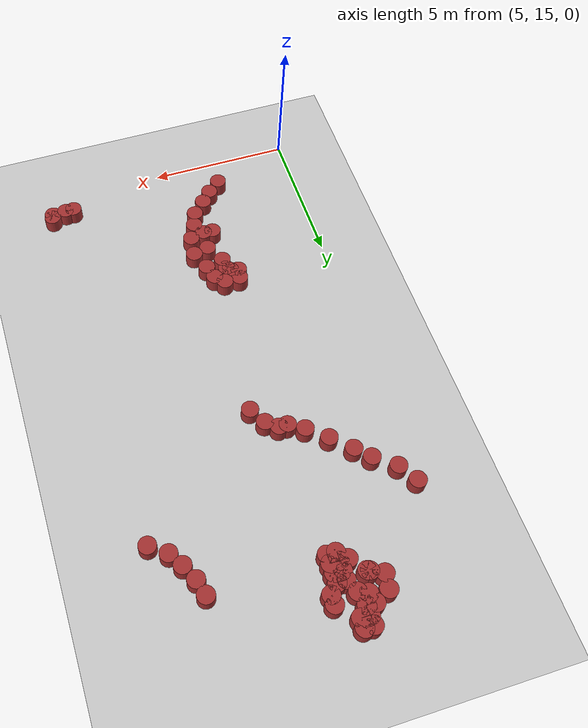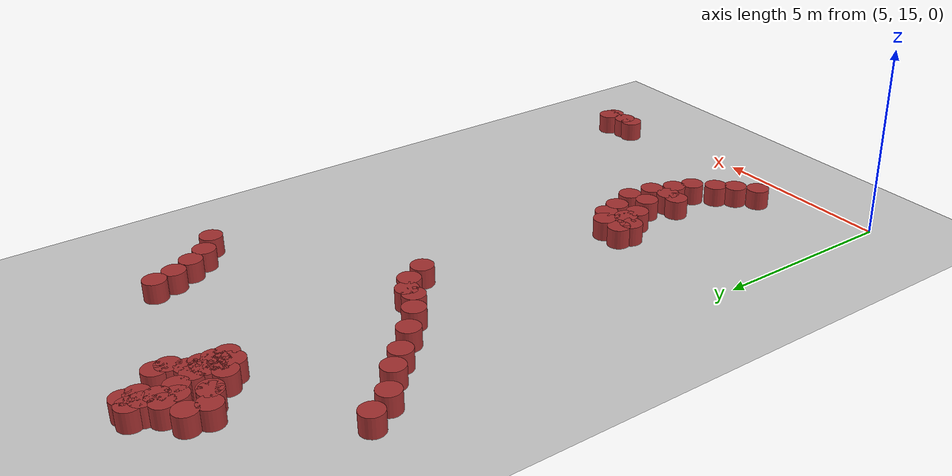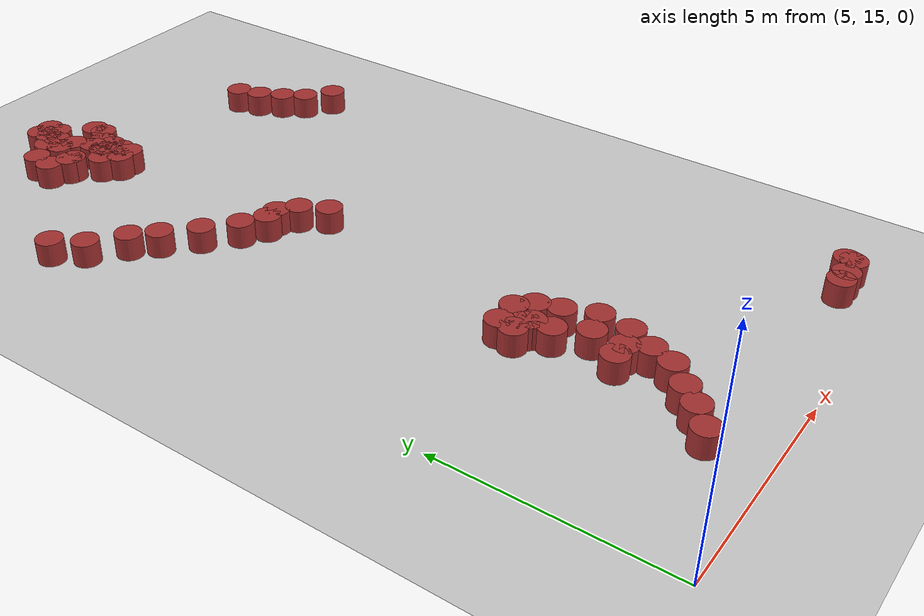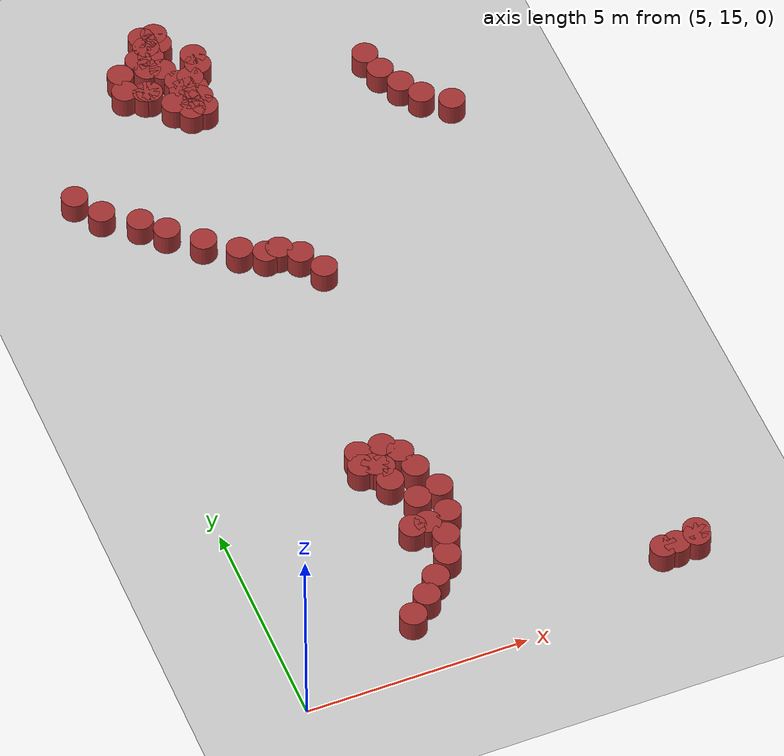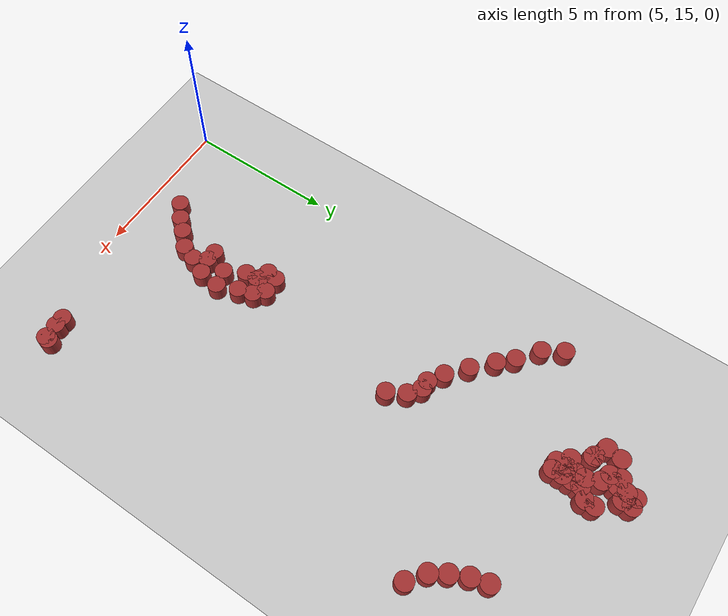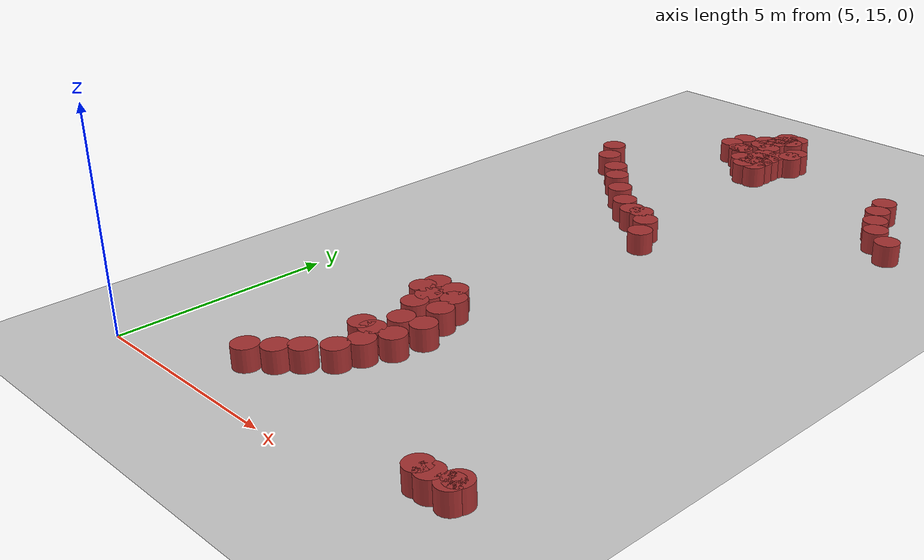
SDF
<sdf version="1.6">
 <world name="default">
  <model name="ground_plane">
   <static>1</static>
   <link name="link">
    <collision name="collision">
     <geometry><plane><normal>0 0 1</normal><size>100 100</size></plane></geometry>
     <surface><friction><ode><mu>100</mu><mu2>50</mu2></ode></friction></surface>
    </collision>
    <visual name="visual">
     <cast_shadows>0</cast_shadows>
     <geometry><plane><normal>0 0 1</normal><size>100 100</size></plane></geometry>
     <material>
      <script><uri>file://media/materials/scripts/gazebo.material</uri><name>Gazebo/Grey</name></script>
     </material>
    </visual>
   </link>
  </model>
  <model name="unit_cylinder_12">
   <static>1</static>
   <pose>9.4503 19.9028 0 0 -0 0</pose>
   <link name="link">
    <inertial>
     <mass>1</mass>
     <inertia><ixx>0.145833</ixx><ixy>0</ixy><ixz>0</ixz><iyy>0.145833</iyy><iyz>0</iyz><izz>0.125</izz></inertia>
    </inertial>
    <collision name="collision">
     <geometry><cylinder><radius>0.3</radius><length>1</length></cylinder></geometry>
    </collision>
    <visual name="visual">
     <geometry><cylinder><radius>0.3</radius><length>1</length></cylinder></geometry>
     <material><ambient>0.648 0.192 0.192 1</ambient><diffuse>0.648 0.192 0.192 1</diffuse></material>
     <material>
      <script><name>Gazebo/Grey</name><uri>file://media/materials/scripts/gazebo.material</uri></script>
     </material>
    </visual>
   </link>
  </model>
  <model name="unit_cylinder_15">
   <static>1</static>
   <pose>9.62674 18.5138 0 0 -0 0</pose>
   <link name="link">
    <inertial>
     <mass>1</mass>
     <inertia><ixx>0.145833</ixx><ixy>0</ixy><ixz>0</ixz><iyy>0.145833</iyy><iyz>0</iyz><izz>0.125</izz></inertia>
    </inertial>
    <collision name="collision">
     <geometry><cylinder><radius>0.3</radius><length>1</length></cylinder></geometry>
    </collision>
    <visual name="visual">
     <geometry><cylinder><radius>0.3</radius><length>1</length></cylinder></geometry>
     <material><ambient>0.648 0.192 0.192 1</ambient><diffuse>0.648 0.192 0.192 1</diffuse></material>
     <material>
      <script><name>Gazebo/Grey</name><uri>file://media/materials/scripts/gazebo.material</uri></script>
     </material>
    </visual>
   </link>
  </model>
  <model name="unit_cylinder_16">
   <static>1</static>
   <pose>9.39027 26.4022 0 0 -0 0</pose>
   <link name="link">
    <inertial>
     <mass>1</mass>
     <inertia><ixx>0.145833</ixx><ixy>0</ixy><ixz>0</ixz><iyy>0.145833</iyy><iyz>0</iyz><izz>0.125</izz></inertia>
    </inertial>
    <collision name="collision">
     <geometry><cylinder><radius>0.3</radius><length>1</length></cylinder></geometry>
    </collision>
    <visual name="visual">
     <geometry><cylinder><radius>0.3</radius><length>1</length></cylinder></geometry>
     <material><ambient>0.648 0.192 0.192 1</ambient><diffuse>0.648 0.192 0.192 1</diffuse></material>
     <material>
      <script><name>Gazebo/Grey</name><uri>file://media/materials/scripts/gazebo.material</uri></script>
     </material>
    </visual>
   </link>
  </model>
  <model name="unit_cylinder_19">
   <static>1</static>
   <pose>9.71979 25.8288 0 0 -0 0</pose>
   <link name="link">
    <inertial>
     <mass>1</mass>
     <inertia><ixx>0.145833</ixx><ixy>0</ixy><ixz>0</ixz><iyy>0.145833</iyy><iyz>0</iyz><izz>0.125</izz></inertia>
    </inertial>
    <collision name="collision">
     <geometry><cylinder><radius>0.3</radius><length>1</length></cylinder></geometry>
    </collision>
    <visual name="visual">
     <geometry><cylinder><radius>0.3</radius><length>1</length></cylinder></geometry>
     <material><ambient>0.648 0.192 0.192 1</ambient><diffuse>0.648 0.192 0.192 1</diffuse></material>
     <material>
      <script><name>Gazebo/Grey</name><uri>file://media/materials/scripts/gazebo.material</uri></script>
     </material>
    </visual>
   </link>
  </model>
  <model name="unit_cylinder_27">
   <static>1</static>
   <pose>8.44473 20.6913 0 0 -0 0</pose>
   <link name="link">
    <inertial>
     <mass>1</mass>
     <inertia><ixx>0.145833</ixx><ixy>0</ixy><ixz>0</ixz><iyy>0.145833</iyy><iyz>0</iyz><izz>0.125</izz></inertia>
    </inertial>
    <collision name="collision">
     <geometry><cylinder><radius>0.3</radius><length>1</length></cylinder></geometry>
    </collision>
    <visual name="visual">
     <geometry><cylinder><radius>0.3</radius><length>1</length></cylinder></geometry>
     <material><ambient>0.648 0.192 0.192 1</ambient><diffuse>0.648 0.192 0.192 1</diffuse></material>
     <material>
      <script><name>Gazebo/Grey</name><uri>file://media/materials/scripts/gazebo.material</uri></script>
     </material>
    </visual>
   </link>
  </model>
  <model name="unit_cylinder_39">
   <static>1</static>
   <pose>8.6638 20.2633 0 0 -0 0</pose>
   <link name="link">
    <inertial>
     <mass>1</mass>
     <inertia><ixx>0.145833</ixx><ixy>0</ixy><ixz>0</ixz><iyy>0.145833</iyy><iyz>0</iyz><izz>0.125</izz></inertia>
    </inertial>
    <collision name="collision">
     <geometry><cylinder><radius>0.3</radius><length>1</length></cylinder></geometry>
    </collision>
    <visual name="visual">
     <geometry><cylinder><radius>0.3</radius><length>1</length></cylinder></geometry>
     <material><ambient>0.648 0.192 0.192 1</ambient><diffuse>0.648 0.192 0.192 1</diffuse></material>
     <material>
      <script><name>Gazebo/Grey</name><uri>file://media/materials/scripts/gazebo.material</uri></script>
     </material>
    </visual>
   </link>
  </model>
  <model name="unit_cylinder_40">
   <static>1</static>
   <pose>8.77488 18.3976 0 0 -0 0</pose>
   <link name="link">
    <inertial>
     <mass>1</mass>
     <inertia><ixx>0.145833</ixx><ixy>0</ixy><ixz>0</ixz><iyy>0.145833</iyy><iyz>0</iyz><izz>0.125</izz></inertia>
    </inertial>
    <collision name="collision">
     <geometry><cylinder><radius>0.3</radius><length>1</length></cylinder></geometry>
    </collision>
    <visual name="visual">
     <geometry><cylinder><radius>0.3</radius><length>1</length></cylinder></geometry>
     <material><ambient>0.648 0.192 0.192 1</ambient><diffuse>0.648 0.192 0.192 1</diffuse></material>
     <material>
      <script><name>Gazebo/Grey</name><uri>file://media/materials/scripts/gazebo.material</uri></script>
     </material>
    </visual>
   </link>
  </model>
  <model name="unit_cylinder_44">
   <static>1</static>
   <pose>8.77645 20.162 0 0 -0 0</pose>
   <link name="link">
    <inertial>
     <mass>1</mass>
     <inertia><ixx>0.145833</ixx><ixy>0</ixy><ixz>0</ixz><iyy>0.145833</iyy><iyz>0</iyz><izz>0.125</izz></inertia>
    </inertial>
    <collision name="collision">
     <geometry><cylinder><radius>0.3</radius><length>1</length></cylinder></geometry>
    </collision>
    <visual name="visual">
     <geometry><cylinder><radius>0.3</radius><length>1</length></cylinder></geometry>
     <material><ambient>0.648 0.192 0.192 1</ambient><diffuse>0.648 0.192 0.192 1</diffuse></material>
     <material>
      <script><name>Gazebo/Grey</name><uri>file://media/materials/scripts/gazebo.material</uri></script>
     </material>
    </visual>
   </link>
  </model>
  <model name="unit_cylinder_52">
   <static>1</static>
   <pose>5.76045 29.1212 0 0 -0 0</pose>
   <link name="link">
    <inertial>
     <mass>1</mass>
     <inertia><ixx>0.145833</ixx><ixy>0</ixy><ixz>0</ixz><iyy>0.145833</iyy><iyz>0</iyz><izz>0.125</izz></inertia>
    </inertial>
    <collision name="collision">
     <geometry><cylinder><radius>0.3</radius><length>1</length></cylinder></geometry>
    </collision>
    <visual name="visual">
     <geometry><cylinder><radius>0.3</radius><length>1</length></cylinder></geometry>
     <material><ambient>0.648 0.192 0.192 1</ambient><diffuse>0.648 0.192 0.192 1</diffuse></material>
     <material>
      <script><name>Gazebo/Grey</name><uri>file://media/materials/scripts/gazebo.material</uri></script>
     </material>
    </visual>
   </link>
  </model>
  <model name="unit_cylinder_67">
   <static>1</static>
   <pose>7.89653 16.2066 0 0 -0 0</pose>
   <link name="link">
    <inertial>
     <mass>1</mass>
     <inertia><ixx>0.145833</ixx><ixy>0</ixy><ixz>0</ixz><iyy>0.145833</iyy><iyz>0</iyz><izz>0.125</izz></inertia>
    </inertial>
    <collision name="collision">
     <geometry><cylinder><radius>0.3</radius><length>1</length></cylinder></geometry>
    </collision>
    <visual name="visual">
     <geometry><cylinder><radius>0.3</radius><length>1</length></cylinder></geometry>
     <material><ambient>0.648 0.192 0.192 1</ambient><diffuse>0.648 0.192 0.192 1</diffuse></material>
     <material>
      <script><name>Gazebo/Grey</name><uri>file://media/materials/scripts/gazebo.material</uri></script>
     </material>
    </visual>
   </link>
  </model>
  <model name="unit_cylinder_73">
   <static>1</static>
   <pose>8.19148 27.0111 0 0 -0 0</pose>
   <link name="link">
    <inertial>
     <mass>1</mass>
     <inertia><ixx>0.145833</ixx><ixy>0</ixy><ixz>0</ixz><iyy>0.145833</iyy><iyz>0</iyz><izz>0.125</izz></inertia>
    </inertial>
    <collision name="collision">
     <geometry><cylinder><radius>0.3</radius><length>1</length></cylinder></geometry>
    </collision>
    <visual name="visual">
     <geometry><cylinder><radius>0.3</radius><length>1</length></cylinder></geometry>
     <material><ambient>0.648 0.192 0.192 1</ambient><diffuse>0.648 0.192 0.192 1</diffuse></material>
     <material>
      <script><name>Gazebo/Grey</name><uri>file://media/materials/scripts/gazebo.material</uri></script>
     </material>
    </visual>
   </link>
  </model>
  <model name="unit_cylinder_74">
   <static>1</static>
   <pose>9.17234 19.0956 0 0 -0 0</pose>
   <link name="link">
    <inertial>
     <mass>1</mass>
     <inertia><ixx>0.145833</ixx><ixy>0</ixy><ixz>0</ixz><iyy>0.145833</iyy><iyz>0</iyz><izz>0.125</izz></inertia>
    </inertial>
    <collision name="collision">
     <geometry><cylinder><radius>0.3</radius><length>1</length></cylinder></geometry>
    </collision>
    <visual name="visual">
     <geometry><cylinder><radius>0.3</radius><length>1</length></cylinder></geometry>
     <material><ambient>0.648 0.192 0.192 1</ambient><diffuse>0.648 0.192 0.192 1</diffuse></material>
     <material>
      <script><name>Gazebo/Grey</name><uri>file://media/materials/scripts/gazebo.material</uri></script>
     </material>
    </visual>
   </link>
  </model>
  <model name="unit_cylinder_75">
   <static>1</static>
   <pose>8.80808 19.7511 0 0 -0 0</pose>
   <link name="link">
    <inertial>
     <mass>1</mass>
     <inertia><ixx>0.145833</ixx><ixy>0</ixy><ixz>0</ixz><iyy>0.145833</iyy><iyz>0</iyz><izz>0.125</izz></inertia>
    </inertial>
    <collision name="collision">
     <geometry><cylinder><radius>0.3</radius><length>1</length></cylinder></geometry>
    </collision>
    <visual name="visual">
     <geometry><cylinder><radius>0.3</radius><length>1</length></cylinder></geometry>
     <material><ambient>0.648 0.192 0.192 1</ambient><diffuse>0.648 0.192 0.192 1</diffuse></material>
     <material>
      <script><name>Gazebo/Grey</name><uri>file://media/materials/scripts/gazebo.material</uri></script>
     </material>
    </visual>
   </link>
  </model>
  <model name="unit_cylinder_76">
   <static>1</static>
   <pose>8.3776 20.3363 0 0 -0 0</pose>
   <link name="link">
    <inertial>
     <mass>1</mass>
     <inertia><ixx>0.145833</ixx><ixy>0</ixy><ixz>0</ixz><iyy>0.145833</iyy><iyz>0</iyz><izz>0.125</izz></inertia>
    </inertial>
    <collision name="collision">
     <geometry><cylinder><radius>0.3</radius><length>1</length></cylinder></geometry>
    </collision>
    <visual name="visual">
     <geometry><cylinder><radius>0.3</radius><length>1</length></cylinder></geometry>
     <material><ambient>0.648 0.192 0.192 1</ambient><diffuse>0.648 0.192 0.192 1</diffuse></material>
     <material>
      <script><name>Gazebo/Grey</name><uri>file://media/materials/scripts/gazebo.material</uri></script>
     </material>
    </visual>
   </link>
  </model>
  <model name="unit_cylinder_77">
   <static>1</static>
   <pose>5.36026 29.7542 0 0 -0 0</pose>
   <link name="link">
    <inertial>
     <mass>1</mass>
     <inertia><ixx>0.145833</ixx><ixy>0</ixy><ixz>0</ixz><iyy>0.145833</iyy><iyz>0</iyz><izz>0.125</izz></inertia>
    </inertial>
    <collision name="collision">
     <geometry><cylinder><radius>0.3</radius><length>1</length></cylinder></geometry>
    </collision>
    <visual name="visual">
     <geometry><cylinder><radius>0.3</radius><length>1</length></cylinder></geometry>
     <material><ambient>0.648 0.192 0.192 1</ambient><diffuse>0.648 0.192 0.192 1</diffuse></material>
     <material>
      <script><name>Gazebo/Grey</name><uri>file://media/materials/scripts/gazebo.material</uri></script>
     </material>
    </visual>
   </link>
  </model>
  <model name="unit_cylinder_78">
   <static>1</static>
   <pose>7.91979 32.0422 0 0 -0 0</pose>
   <link name="link">
    <inertial>
     <mass>1</mass>
     <inertia><ixx>0.145833</ixx><ixy>0</ixy><ixz>0</ixz><iyy>0.145833</iyy><iyz>0</iyz><izz>0.125</izz></inertia>
    </inertial>
    <collision name="collision">
     <geometry><cylinder><radius>0.3</radius><length>1</length></cylinder></geometry>
    </collision>
    <visual name="visual">
     <geometry><cylinder><radius>0.3</radius><length>1</length></cylinder></geometry>
     <material><ambient>0.648 0.192 0.192 1</ambient><diffuse>0.648 0.192 0.192 1</diffuse></material>
     <material>
      <script><name>Gazebo/Grey</name><uri>file://media/materials/scripts/gazebo.material</uri></script>
     </material>
    </visual>
   </link>
  </model>
  <model name="unit_cylinder_79">
   <static>1</static>
   <pose>9.1178 18.3862 0 0 -0 0</pose>
   <link name="link">
    <inertial>
     <mass>1</mass>
     <inertia><ixx>0.145833</ixx><ixy>0</ixy><ixz>0</ixz><iyy>0.145833</iyy><iyz>0</iyz><izz>0.125</izz></inertia>
    </inertial>
    <collision name="collision">
     <geometry><cylinder><radius>0.3</radius><length>1</length></cylinder></geometry>
    </collision>
    <visual name="visual">
     <geometry><cylinder><radius>0.3</radius><length>1</length></cylinder></geometry>
     <material><ambient>0.648 0.192 0.192 1</ambient><diffuse>0.648 0.192 0.192 1</diffuse></material>
     <material>
      <script><name>Gazebo/Grey</name><uri>file://media/materials/scripts/gazebo.material</uri></script>
     </material>
    </visual>
   </link>
  </model>
  <model name="unit_cylinder_81">
   <static>1</static>
   <pose>8.1 33 0 0 -0 0</pose>
   <link name="link">
    <inertial>
     <mass>1</mass>
     <inertia><ixx>0.145833</ixx><ixy>0</ixy><ixz>0</ixz><iyy>0.145833</iyy><iyz>0</iyz><izz>0.125</izz></inertia>
    </inertial>
    <collision name="collision">
     <geometry><cylinder><radius>0.3</radius><length>1</length></cylinder></geometry>
    </collision>
    <visual name="visual">
     <geometry><cylinder><radius>0.3</radius><length>1</length></cylinder></geometry>
     <material><ambient>0.648 0.192 0.192 1</ambient><diffuse>0.648 0.192 0.192 1</diffuse></material>
     <material>
      <script><name>Gazebo/Grey</name><uri>file://media/materials/scripts/gazebo.material</uri></script>
     </material>
    </visual>
   </link>
  </model>
  <model name="unit_cylinder_84">
   <static>1</static>
   <pose>8.4 31.5 0 0 -0 0</pose>
   <link name="link">
    <inertial>
     <mass>1</mass>
     <inertia><ixx>0.145833</ixx><ixy>0</ixy><ixz>0</ixz><iyy>0.145833</iyy><iyz>0</iyz><izz>0.125</izz></inertia>
    </inertial>
    <collision name="collision">
     <geometry><cylinder><radius>0.3</radius><length>1</length></cylinder></geometry>
    </collision>
    <visual name="visual">
     <geometry><cylinder><radius>0.3</radius><length>1</length></cylinder></geometry>
     <material><ambient>0.648 0.192 0.192 1</ambient><diffuse>0.648 0.192 0.192 1</diffuse></material>
     <material>
      <script><name>Gazebo/Grey</name><uri>file://media/materials/scripts/gazebo.material</uri></script>
     </material>
    </visual>
   </link>
  </model>
  <model name="unit_cylinder_85">
   <static>1</static>
   <pose>8.4 33 0 0 -0 0</pose>
   <link name="link">
    <inertial>
     <mass>1</mass>
     <inertia><ixx>0.145833</ixx><ixy>0</ixy><ixz>0</ixz><iyy>0.145833</iyy><iyz>0</iyz><izz>0.125</izz></inertia>
    </inertial>
    <collision name="collision">
     <geometry><cylinder><radius>0.3</radius><length>1</length></cylinder></geometry>
    </collision>
    <visual name="visual">
     <geometry><cylinder><radius>0.3</radius><length>1</length></cylinder></geometry>
     <material><ambient>0.648 0.192 0.192 1</ambient><diffuse>0.648 0.192 0.192 1</diffuse></material>
     <material>
      <script><name>Gazebo/Grey</name><uri>file://media/materials/scripts/gazebo.material</uri></script>
     </material>
    </visual>
   </link>
  </model>
  <model name="unit_cylinder_86">
   <static>1</static>
   <pose>8.4 33.3 0 0 -0 0</pose>
   <link name="link">
    <inertial>
     <mass>1</mass>
     <inertia><ixx>0.145833</ixx><ixy>0</ixy><ixz>0</ixz><iyy>0.145833</iyy><iyz>0</iyz><izz>0.125</izz></inertia>
    </inertial>
    <collision name="collision">
     <geometry><cylinder><radius>0.3</radius><length>1</length></cylinder></geometry>
    </collision>
    <visual name="visual">
     <geometry><cylinder><radius>0.3</radius><length>1</length></cylinder></geometry>
     <material><ambient>0.648 0.192 0.192 1</ambient><diffuse>0.648 0.192 0.192 1</diffuse></material>
     <material>
      <script><name>Gazebo/Grey</name><uri>file://media/materials/scripts/gazebo.material</uri></script>
     </material>
    </visual>
   </link>
  </model>
  <model name="unit_cylinder_87">
   <static>1</static>
   <pose>8.4 33.6 0 0 -0 0</pose>
   <link name="link">
    <inertial>
     <mass>1</mass>
     <inertia><ixx>0.145833</ixx><ixy>0</ixy><ixz>0</ixz><iyy>0.145833</iyy><iyz>0</iyz><izz>0.125</izz></inertia>
    </inertial>
    <collision name="collision">
     <geometry><cylinder><radius>0.3</radius><length>1</length></cylinder></geometry>
    </collision>
    <visual name="visual">
     <geometry><cylinder><radius>0.3</radius><length>1</length></cylinder></geometry>
     <material><ambient>0.648 0.192 0.192 1</ambient><diffuse>0.648 0.192 0.192 1</diffuse></material>
     <material>
      <script><name>Gazebo/Grey</name><uri>file://media/materials/scripts/gazebo.material</uri></script>
     </material>
    </visual>
   </link>
  </model>
  <model name="unit_cylinder_91">
   <static>1</static>
   <pose>8.7 26.7 0 0 -0 0</pose>
   <link name="link">
    <inertial>
     <mass>1</mass>
     <inertia><ixx>0.145833</ixx><ixy>0</ixy><ixz>0</ixz><iyy>0.145833</iyy><iyz>0</iyz><izz>0.125</izz></inertia>
    </inertial>
    <collision name="collision">
     <geometry><cylinder><radius>0.3</radius><length>1</length></cylinder></geometry>
    </collision>
    <visual name="visual">
     <geometry><cylinder><radius>0.3</radius><length>1</length></cylinder></geometry>
     <material><ambient>0.648 0.192 0.192 1</ambient><diffuse>0.648 0.192 0.192 1</diffuse></material>
     <material>
      <script><name>Gazebo/Grey</name><uri>file://media/materials/scripts/gazebo.material</uri></script>
     </material>
    </visual>
   </link>
  </model>
  <model name="unit_cylinder_92">
   <static>1</static>
   <pose>8.7 31.2 0 0 -0 0</pose>
   <link name="link">
    <inertial>
     <mass>1</mass>
     <inertia><ixx>0.145833</ixx><ixy>0</ixy><ixz>0</ixz><iyy>0.145833</iyy><iyz>0</iyz><izz>0.125</izz></inertia>
    </inertial>
    <collision name="collision">
     <geometry><cylinder><radius>0.3</radius><length>1</length></cylinder></geometry>
    </collision>
    <visual name="visual">
     <geometry><cylinder><radius>0.3</radius><length>1</length></cylinder></geometry>
     <material><ambient>0.648 0.192 0.192 1</ambient><diffuse>0.648 0.192 0.192 1</diffuse></material>
     <material>
      <script><name>Gazebo/Grey</name><uri>file://media/materials/scripts/gazebo.material</uri></script>
     </material>
    </visual>
   </link>
  </model>
  <model name="unit_cylinder_93">
   <static>1</static>
   <pose>8.7 31.5 0 0 -0 0</pose>
   <link name="link">
    <inertial>
     <mass>1</mass>
     <inertia><ixx>0.145833</ixx><ixy>0</ixy><ixz>0</ixz><iyy>0.145833</iyy><iyz>0</iyz><izz>0.125</izz></inertia>
    </inertial>
    <collision name="collision">
     <geometry><cylinder><radius>0.3</radius><length>1</length></cylinder></geometry>
    </collision>
    <visual name="visual">
     <geometry><cylinder><radius>0.3</radius><length>1</length></cylinder></geometry>
     <material><ambient>0.648 0.192 0.192 1</ambient><diffuse>0.648 0.192 0.192 1</diffuse></material>
     <material>
      <script><name>Gazebo/Grey</name><uri>file://media/materials/scripts/gazebo.material</uri></script>
     </material>
    </visual>
   </link>
  </model>
  <model name="unit_cylinder_94">
   <static>1</static>
   <pose>8.7 31.8 0 0 -0 0</pose>
   <link name="link">
    <inertial>
     <mass>1</mass>
     <inertia><ixx>0.145833</ixx><ixy>0</ixy><ixz>0</ixz><iyy>0.145833</iyy><iyz>0</iyz><izz>0.125</izz></inertia>
    </inertial>
    <collision name="collision">
     <geometry><cylinder><radius>0.3</radius><length>1</length></cylinder></geometry>
    </collision>
    <visual name="visual">
     <geometry><cylinder><radius>0.3</radius><length>1</length></cylinder></geometry>
     <material><ambient>0.648 0.192 0.192 1</ambient><diffuse>0.648 0.192 0.192 1</diffuse></material>
     <material>
      <script><name>Gazebo/Grey</name><uri>file://media/materials/scripts/gazebo.material</uri></script>
     </material>
    </visual>
   </link>
  </model>
  <model name="unit_cylinder_95">
   <static>1</static>
   <pose>8.7 32.1 0 0 -0 0</pose>
   <link name="link">
    <inertial>
     <mass>1</mass>
     <inertia><ixx>0.145833</ixx><ixy>0</ixy><ixz>0</ixz><iyy>0.145833</iyy><iyz>0</iyz><izz>0.125</izz></inertia>
    </inertial>
    <collision name="collision">
     <geometry><cylinder><radius>0.3</radius><length>1</length></cylinder></geometry>
    </collision>
    <visual name="visual">
     <geometry><cylinder><radius>0.3</radius><length>1</length></cylinder></geometry>
     <material><ambient>0.648 0.192 0.192 1</ambient><diffuse>0.648 0.192 0.192 1</diffuse></material>
     <material>
      <script><name>Gazebo/Grey</name><uri>file://media/materials/scripts/gazebo.material</uri></script>
     </material>
    </visual>
   </link>
  </model>
  <model name="unit_cylinder_96">
   <static>1</static>
   <pose>8.7 33.3 0 0 -0 0</pose>
   <link name="link">
    <inertial>
     <mass>1</mass>
     <inertia><ixx>0.145833</ixx><ixy>0</ixy><ixz>0</ixz><iyy>0.145833</iyy><iyz>0</iyz><izz>0.125</izz></inertia>
    </inertial>
    <collision name="collision">
     <geometry><cylinder><radius>0.3</radius><length>1</length></cylinder></geometry>
    </collision>
    <visual name="visual">
     <geometry><cylinder><radius>0.3</radius><length>1</length></cylinder></geometry>
     <material><ambient>0.648 0.192 0.192 1</ambient><diffuse>0.648 0.192 0.192 1</diffuse></material>
     <material>
      <script><name>Gazebo/Grey</name><uri>file://media/materials/scripts/gazebo.material</uri></script>
     </material>
    </visual>
   </link>
  </model>
  <model name="unit_cylinder_97">
   <static>1</static>
   <pose>8.7 33.6 0 0 -0 0</pose>
   <link name="link">
    <inertial>
     <mass>1</mass>
     <inertia><ixx>0.145833</ixx><ixy>0</ixy><ixz>0</ixz><iyy>0.145833</iyy><iyz>0</iyz><izz>0.125</izz></inertia>
    </inertial>
    <collision name="collision">
     <geometry><cylinder><radius>0.3</radius><length>1</length></cylinder></geometry>
    </collision>
    <visual name="visual">
     <geometry><cylinder><radius>0.3</radius><length>1</length></cylinder></geometry>
     <material><ambient>0.648 0.192 0.192 1</ambient><diffuse>0.648 0.192 0.192 1</diffuse></material>
     <material>
      <script><name>Gazebo/Grey</name><uri>file://media/materials/scripts/gazebo.material</uri></script>
     </material>
    </visual>
   </link>
  </model>
  <model name="unit_cylinder_100">
   <static>1</static>
   <pose>9 20.7 0 0 -0 0</pose>
   <link name="link">
    <inertial>
     <mass>1</mass>
     <inertia><ixx>0.145833</ixx><ixy>0</ixy><ixz>0</ixz><iyy>0.145833</iyy><iyz>0</iyz><izz>0.125</izz></inertia>
    </inertial>
    <collision name="collision">
     <geometry><cylinder><radius>0.3</radius><length>1</length></cylinder></geometry>
    </collision>
    <visual name="visual">
     <geometry><cylinder><radius>0.3</radius><length>1</length></cylinder></geometry>
     <material><ambient>0.648 0.192 0.192 1</ambient><diffuse>0.648 0.192 0.192 1</diffuse></material>
     <material>
      <script><name>Gazebo/Grey</name><uri>file://media/materials/scripts/gazebo.material</uri></script>
     </material>
    </visual>
   </link>
  </model>
  <model name="unit_cylinder_101">
   <static>1</static>
   <pose>9 26.7 0 0 -0 0</pose>
   <link name="link">
    <inertial>
     <mass>1</mass>
     <inertia><ixx>0.145833</ixx><ixy>0</ixy><ixz>0</ixz><iyy>0.145833</iyy><iyz>0</iyz><izz>0.125</izz></inertia>
    </inertial>
    <collision name="collision">
     <geometry><cylinder><radius>0.3</radius><length>1</length></cylinder></geometry>
    </collision>
    <visual name="visual">
     <geometry><cylinder><radius>0.3</radius><length>1</length></cylinder></geometry>
     <material><ambient>0.648 0.192 0.192 1</ambient><diffuse>0.648 0.192 0.192 1</diffuse></material>
     <material>
      <script><name>Gazebo/Grey</name><uri>file://media/materials/scripts/gazebo.material</uri></script>
     </material>
    </visual>
   </link>
  </model>
  <model name="unit_cylinder_102">
   <static>1</static>
   <pose>7.55377 27.5444 0 0 -0 0</pose>
   <link name="link">
    <inertial>
     <mass>1</mass>
     <inertia><ixx>0.145833</ixx><ixy>0</ixy><ixz>0</ixz><iyy>0.145833</iyy><iyz>0</iyz><izz>0.125</izz></inertia>
    </inertial>
    <collision name="collision">
     <geometry><cylinder><radius>0.3</radius><length>1</length></cylinder></geometry>
    </collision>
    <visual name="visual">
     <geometry><cylinder><radius>0.3</radius><length>1</length></cylinder></geometry>
     <material><ambient>0.648 0.192 0.192 1</ambient><diffuse>0.648 0.192 0.192 1</diffuse></material>
     <material>
      <script><name>Gazebo/Grey</name><uri>file://media/materials/scripts/gazebo.material</uri></script>
     </material>
    </visual>
   </link>
  </model>
  <model name="unit_cylinder_103">
   <static>1</static>
   <pose>6.91897 28.1366 0 0 -0 0</pose>
   <link name="link">
    <inertial>
     <mass>1</mass>
     <inertia><ixx>0.145833</ixx><ixy>0</ixy><ixz>0</ixz><iyy>0.145833</iyy><iyz>0</iyz><izz>0.125</izz></inertia>
    </inertial>
    <collision name="collision">
     <geometry><cylinder><radius>0.3</radius><length>1</length></cylinder></geometry>
    </collision>
    <visual name="visual">
     <geometry><cylinder><radius>0.3</radius><length>1</length></cylinder></geometry>
     <material><ambient>0.648 0.192 0.192 1</ambient><diffuse>0.648 0.192 0.192 1</diffuse></material>
     <material>
      <script><name>Gazebo/Grey</name><uri>file://media/materials/scripts/gazebo.material</uri></script>
     </material>
    </visual>
   </link>
  </model>
  <model name="unit_cylinder_104">
   <static>1</static>
   <pose>9 31.2 0 0 -0 0</pose>
   <link name="link">
    <inertial>
     <mass>1</mass>
     <inertia><ixx>0.145833</ixx><ixy>0</ixy><ixz>0</ixz><iyy>0.145833</iyy><iyz>0</iyz><izz>0.125</izz></inertia>
    </inertial>
    <collision name="collision">
     <geometry><cylinder><radius>0.3</radius><length>1</length></cylinder></geometry>
    </collision>
    <visual name="visual">
     <geometry><cylinder><radius>0.3</radius><length>1</length></cylinder></geometry>
     <material><ambient>0.648 0.192 0.192 1</ambient><diffuse>0.648 0.192 0.192 1</diffuse></material>
     <material>
      <script><name>Gazebo/Grey</name><uri>file://media/materials/scripts/gazebo.material</uri></script>
     </material>
    </visual>
   </link>
  </model>
  <model name="unit_cylinder_105">
   <static>1</static>
   <pose>9 31.5 0 0 -0 0</pose>
   <link name="link">
    <inertial>
     <mass>1</mass>
     <inertia><ixx>0.145833</ixx><ixy>0</ixy><ixz>0</ixz><iyy>0.145833</iyy><iyz>0</iyz><izz>0.125</izz></inertia>
    </inertial>
    <collision name="collision">
     <geometry><cylinder><radius>0.3</radius><length>1</length></cylinder></geometry>
    </collision>
    <visual name="visual">
     <geometry><cylinder><radius>0.3</radius><length>1</length></cylinder></geometry>
     <material><ambient>0.648 0.192 0.192 1</ambient><diffuse>0.648 0.192 0.192 1</diffuse></material>
     <material>
      <script><name>Gazebo/Grey</name><uri>file://media/materials/scripts/gazebo.material</uri></script>
     </material>
    </visual>
   </link>
  </model>
  <model name="unit_cylinder_106">
   <static>1</static>
   <pose>9 31.8 0 0 -0 0</pose>
   <link name="link">
    <inertial>
     <mass>1</mass>
     <inertia><ixx>0.145833</ixx><ixy>0</ixy><ixz>0</ixz><iyy>0.145833</iyy><iyz>0</iyz><izz>0.125</izz></inertia>
    </inertial>
    <collision name="collision">
     <geometry><cylinder><radius>0.3</radius><length>1</length></cylinder></geometry>
    </collision>
    <visual name="visual">
     <geometry><cylinder><radius>0.3</radius><length>1</length></cylinder></geometry>
     <material><ambient>0.648 0.192 0.192 1</ambient><diffuse>0.648 0.192 0.192 1</diffuse></material>
     <material>
      <script><name>Gazebo/Grey</name><uri>file://media/materials/scripts/gazebo.material</uri></script>
     </material>
    </visual>
   </link>
  </model>
  <model name="unit_cylinder_107">
   <static>1</static>
   <pose>9 32.1 0 0 -0 0</pose>
   <link name="link">
    <inertial>
     <mass>1</mass>
     <inertia><ixx>0.145833</ixx><ixy>0</ixy><ixz>0</ixz><iyy>0.145833</iyy><iyz>0</iyz><izz>0.125</izz></inertia>
    </inertial>
    <collision name="collision">
     <geometry><cylinder><radius>0.3</radius><length>1</length></cylinder></geometry>
    </collision>
    <visual name="visual">
     <geometry><cylinder><radius>0.3</radius><length>1</length></cylinder></geometry>
     <material><ambient>0.648 0.192 0.192 1</ambient><diffuse>0.648 0.192 0.192 1</diffuse></material>
     <material>
      <script><name>Gazebo/Grey</name><uri>file://media/materials/scripts/gazebo.material</uri></script>
     </material>
    </visual>
   </link>
  </model>
  <model name="unit_cylinder_108">
   <static>1</static>
   <pose>9.3 20.4 0 0 -0 0</pose>
   <link name="link">
    <inertial>
     <mass>1</mass>
     <inertia><ixx>0.145833</ixx><ixy>0</ixy><ixz>0</ixz><iyy>0.145833</iyy><iyz>0</iyz><izz>0.125</izz></inertia>
    </inertial>
    <collision name="collision">
     <geometry><cylinder><radius>0.3</radius><length>1</length></cylinder></geometry>
    </collision>
    <visual name="visual">
     <geometry><cylinder><radius>0.3</radius><length>1</length></cylinder></geometry>
     <material><ambient>0.648 0.192 0.192 1</ambient><diffuse>0.648 0.192 0.192 1</diffuse></material>
     <material>
      <script><name>Gazebo/Grey</name><uri>file://media/materials/scripts/gazebo.material</uri></script>
     </material>
    </visual>
   </link>
  </model>
  <model name="unit_cylinder_109">
   <static>1</static>
   <pose>9.72135 19.2222 0 0 -0 0</pose>
   <link name="link">
    <inertial>
     <mass>1</mass>
     <inertia><ixx>0.145833</ixx><ixy>0</ixy><ixz>0</ixz><iyy>0.145833</iyy><iyz>0</iyz><izz>0.125</izz></inertia>
    </inertial>
    <collision name="collision">
     <geometry><cylinder><radius>0.3</radius><length>1</length></cylinder></geometry>
    </collision>
    <visual name="visual">
     <geometry><cylinder><radius>0.3</radius><length>1</length></cylinder></geometry>
     <material><ambient>0.648 0.192 0.192 1</ambient><diffuse>0.648 0.192 0.192 1</diffuse></material>
     <material>
      <script><name>Gazebo/Grey</name><uri>file://media/materials/scripts/gazebo.material</uri></script>
     </material>
    </visual>
   </link>
  </model>
  <model name="unit_cylinder_110">
   <static>1</static>
   <pose>6.46798 28.5902 0 0 -0 0</pose>
   <link name="link">
    <inertial>
     <mass>1</mass>
     <inertia><ixx>0.145833</ixx><ixy>0</ixy><ixz>0</ixz><iyy>0.145833</iyy><iyz>0</iyz><izz>0.125</izz></inertia>
    </inertial>
    <collision name="collision">
     <geometry><cylinder><radius>0.3</radius><length>1</length></cylinder></geometry>
    </collision>
    <visual name="visual">
     <geometry><cylinder><radius>0.3</radius><length>1</length></cylinder></geometry>
     <material><ambient>0.648 0.192 0.192 1</ambient><diffuse>0.648 0.192 0.192 1</diffuse></material>
     <material>
      <script><name>Gazebo/Grey</name><uri>file://media/materials/scripts/gazebo.material</uri></script>
     </material>
    </visual>
   </link>
  </model>
  <model name="unit_cylinder_111">
   <static>1</static>
   <pose>9.3 32.4 0 0 -0 0</pose>
   <link name="link">
    <inertial>
     <mass>1</mass>
     <inertia><ixx>0.145833</ixx><ixy>0</ixy><ixz>0</ixz><iyy>0.145833</iyy><iyz>0</iyz><izz>0.125</izz></inertia>
    </inertial>
    <collision name="collision">
     <geometry><cylinder><radius>0.3</radius><length>1</length></cylinder></geometry>
    </collision>
    <visual name="visual">
     <geometry><cylinder><radius>0.3</radius><length>1</length></cylinder></geometry>
     <material><ambient>0.648 0.192 0.192 1</ambient><diffuse>0.648 0.192 0.192 1</diffuse></material>
     <material>
      <script><name>Gazebo/Grey</name><uri>file://media/materials/scripts/gazebo.material</uri></script>
     </material>
    </visual>
   </link>
  </model>
  <model name="unit_cylinder_112">
   <static>1</static>
   <pose>9.3 32.7 0 0 -0 0</pose>
   <link name="link">
    <inertial>
     <mass>1</mass>
     <inertia><ixx>0.145833</ixx><ixy>0</ixy><ixz>0</ixz><iyy>0.145833</iyy><iyz>0</iyz><izz>0.125</izz></inertia>
    </inertial>
    <collision name="collision">
     <geometry><cylinder><radius>0.3</radius><length>1</length></cylinder></geometry>
    </collision>
    <visual name="visual">
     <geometry><cylinder><radius>0.3</radius><length>1</length></cylinder></geometry>
     <material><ambient>0.648 0.192 0.192 1</ambient><diffuse>0.648 0.192 0.192 1</diffuse></material>
     <material>
      <script><name>Gazebo/Grey</name><uri>file://media/materials/scripts/gazebo.material</uri></script>
     </material>
    </visual>
   </link>
  </model>
  <model name="unit_cylinder_113">
   <static>1</static>
   <pose>9.17546 17.4355 0 0 -0 0</pose>
   <link name="link">
    <inertial>
     <mass>1</mass>
     <inertia><ixx>0.145833</ixx><ixy>0</ixy><ixz>0</ixz><iyy>0.145833</iyy><iyz>0</iyz><izz>0.125</izz></inertia>
    </inertial>
    <collision name="collision">
     <geometry><cylinder><radius>0.3</radius><length>1</length></cylinder></geometry>
    </collision>
    <visual name="visual">
     <geometry><cylinder><radius>0.3</radius><length>1</length></cylinder></geometry>
     <material><ambient>0.648 0.192 0.192 1</ambient><diffuse>0.648 0.192 0.192 1</diffuse></material>
     <material>
      <script><name>Gazebo/Grey</name><uri>file://media/materials/scripts/gazebo.material</uri></script>
     </material>
    </visual>
   </link>
  </model>
  <model name="unit_cylinder_114">
   <static>1</static>
   <pose>9.3552 17.9463 0 0 -0 0</pose>
   <link name="link">
    <inertial>
     <mass>1</mass>
     <inertia><ixx>0.145833</ixx><ixy>0</ixy><ixz>0</ixz><iyy>0.145833</iyy><iyz>0</iyz><izz>0.125</izz></inertia>
    </inertial>
    <collision name="collision">
     <geometry><cylinder><radius>0.3</radius><length>1</length></cylinder></geometry>
    </collision>
    <visual name="visual">
     <geometry><cylinder><radius>0.3</radius><length>1</length></cylinder></geometry>
     <material><ambient>0.648 0.192 0.192 1</ambient><diffuse>0.648 0.192 0.192 1</diffuse></material>
     <material>
      <script><name>Gazebo/Grey</name><uri>file://media/materials/scripts/gazebo.material</uri></script>
     </material>
    </visual>
   </link>
  </model>
  <model name="unit_cylinder_115">
   <static>1</static>
   <pose>8.19233 32.6713 0 0 -0 0</pose>
   <link name="link">
    <inertial>
     <mass>1</mass>
     <inertia><ixx>0.145833</ixx><ixy>0</ixy><ixz>0</ixz><iyy>0.145833</iyy><iyz>0</iyz><izz>0.125</izz></inertia>
    </inertial>
    <collision name="collision">
     <geometry><cylinder><radius>0.3</radius><length>1</length></cylinder></geometry>
    </collision>
    <visual name="visual">
     <geometry><cylinder><radius>0.3</radius><length>1</length></cylinder></geometry>
     <material><ambient>0.648 0.192 0.192 1</ambient><diffuse>0.648 0.192 0.192 1</diffuse></material>
     <material>
      <script><name>Gazebo/Grey</name><uri>file://media/materials/scripts/gazebo.material</uri></script>
     </material>
    </visual>
   </link>
  </model>
  <model name="unit_cylinder_116">
   <static>1</static>
   <pose>8.72273 16.9848 0 0 -0 0</pose>
   <link name="link">
    <inertial>
     <mass>1</mass>
     <inertia><ixx>0.145833</ixx><ixy>0</ixy><ixz>0</ixz><iyy>0.145833</iyy><iyz>0</iyz><izz>0.125</izz></inertia>
    </inertial>
    <collision name="collision">
     <geometry><cylinder><radius>0.3</radius><length>1</length></cylinder></geometry>
    </collision>
    <visual name="visual">
     <geometry><cylinder><radius>0.3</radius><length>1</length></cylinder></geometry>
     <material><ambient>0.648 0.192 0.192 1</ambient><diffuse>0.648 0.192 0.192 1</diffuse></material>
     <material>
      <script><name>Gazebo/Grey</name><uri>file://media/materials/scripts/gazebo.material</uri></script>
     </material>
    </visual>
   </link>
  </model>
  <model name="unit_cylinder_117">
   <static>1</static>
   <pose>8.35858 16.594 0 0 -0 0</pose>
   <link name="link">
    <inertial>
     <mass>1</mass>
     <inertia><ixx>0.145833</ixx><ixy>0</ixy><ixz>0</ixz><iyy>0.145833</iyy><iyz>0</iyz><izz>0.125</izz></inertia>
    </inertial>
    <collision name="collision">
     <geometry><cylinder><radius>0.3</radius><length>1</length></cylinder></geometry>
    </collision>
    <visual name="visual">
     <geometry><cylinder><radius>0.3</radius><length>1</length></cylinder></geometry>
     <material><ambient>0.648 0.192 0.192 1</ambient><diffuse>0.648 0.192 0.192 1</diffuse></material>
     <material>
      <script><name>Gazebo/Grey</name><uri>file://media/materials/scripts/gazebo.material</uri></script>
     </material>
    </visual>
   </link>
  </model>
  <model name="unit_cylinder_118">
   <static>1</static>
   <pose>7.99629 32.0183 0 0 -0 0</pose>
   <link name="link">
    <inertial>
     <mass>1</mass>
     <inertia><ixx>0.145833</ixx><ixy>0</ixy><ixz>0</ixz><iyy>0.145833</iyy><iyz>0</iyz><izz>0.125</izz></inertia>
    </inertial>
    <collision name="collision">
     <geometry><cylinder><radius>0.3</radius><length>1</length></cylinder></geometry>
    </collision>
    <visual name="visual">
     <geometry><cylinder><radius>0.3</radius><length>1</length></cylinder></geometry>
     <material><ambient>0.648 0.192 0.192 1</ambient><diffuse>0.648 0.192 0.192 1</diffuse></material>
     <material>
      <script><name>Gazebo/Grey</name><uri>file://media/materials/scripts/gazebo.material</uri></script>
     </material>
    </visual>
   </link>
  </model>
  <model name="unit_cylinder_119">
   <static>1</static>
   <pose>7.49445 32.2447 0 0 -0 0</pose>
   <link name="link">
    <inertial>
     <mass>1</mass>
     <inertia><ixx>0.145833</ixx><ixy>0</ixy><ixz>0</ixz><iyy>0.145833</iyy><iyz>0</iyz><izz>0.125</izz></inertia>
    </inertial>
    <collision name="collision">
     <geometry><cylinder><radius>0.3</radius><length>1</length></cylinder></geometry>
    </collision>
    <visual name="visual">
     <geometry><cylinder><radius>0.3</radius><length>1</length></cylinder></geometry>
     <material><ambient>0.648 0.192 0.192 1</ambient><diffuse>0.648 0.192 0.192 1</diffuse></material>
     <material>
      <script><name>Gazebo/Grey</name><uri>file://media/materials/scripts/gazebo.material</uri></script>
     </material>
    </visual>
   </link>
  </model>
  <model name="unit_cylinder_125">
   <static>1</static>
   <pose>7.57163 32.7352 0 0 -0 0</pose>
   <link name="link">
    <inertial>
     <mass>1</mass>
     <inertia><ixx>0.145833</ixx><ixy>0</ixy><ixz>0</ixz><iyy>0.145833</iyy><iyz>0</iyz><izz>0.125</izz></inertia>
    </inertial>
    <collision name="collision">
     <geometry><cylinder><radius>0.3</radius><length>1</length></cylinder></geometry>
    </collision>
    <visual name="visual">
     <geometry><cylinder><radius>0.3</radius><length>1</length></cylinder></geometry>
     <material><ambient>0.648 0.192 0.192 1</ambient><diffuse>0.648 0.192 0.192 1</diffuse></material>
     <material>
      <script><name>Gazebo/Grey</name><uri>file://media/materials/scripts/gazebo.material</uri></script>
     </material>
    </visual>
   </link>
  </model>
  <model name="unit_cylinder_126">
   <static>1</static>
   <pose>8.5075 32.5372 0 0 -0 0</pose>
   <link name="link">
    <inertial>
     <mass>1</mass>
     <inertia><ixx>0.145833</ixx><ixy>0</ixy><ixz>0</ixz><iyy>0.145833</iyy><iyz>0</iyz><izz>0.125</izz></inertia>
    </inertial>
    <collision name="collision">
     <geometry><cylinder><radius>0.3</radius><length>1</length></cylinder></geometry>
    </collision>
    <visual name="visual">
     <geometry><cylinder><radius>0.3</radius><length>1</length></cylinder></geometry>
     <material><ambient>0.648 0.192 0.192 1</ambient><diffuse>0.648 0.192 0.192 1</diffuse></material>
     <material>
      <script><name>Gazebo/Grey</name><uri>file://media/materials/scripts/gazebo.material</uri></script>
     </material>
    </visual>
   </link>
  </model>
  <model name="unit_cylinder_141">
   <static>1</static>
   <pose>13.5 15.9 0 0 -0 0</pose>
   <link name="link">
    <inertial>
     <mass>1</mass>
     <inertia><ixx>0.145833</ixx><ixy>0</ixy><ixz>0</ixz><iyy>0.145833</iyy><iyz>0</iyz><izz>0.125</izz></inertia>
    </inertial>
    <collision name="collision">
     <geometry><cylinder><radius>0.3</radius><length>1</length></cylinder></geometry>
    </collision>
    <visual name="visual">
     <geometry><cylinder><radius>0.3</radius><length>1</length></cylinder></geometry>
     <material><ambient>0.648 0.192 0.192 1</ambient><diffuse>0.648 0.192 0.192 1</diffuse></material>
     <material>
      <script><name>Gazebo/Grey</name><uri>file://media/materials/scripts/gazebo.material</uri></script>
     </material>
    </visual>
   </link>
  </model>
  <model name="unit_cylinder_144">
   <static>1</static>
   <pose>13.8 15.9 0 0 -0 0</pose>
   <link name="link">
    <inertial>
     <mass>1</mass>
     <inertia><ixx>0.145833</ixx><ixy>0</ixy><ixz>0</ixz><iyy>0.145833</iyy><iyz>0</iyz><izz>0.125</izz></inertia>
    </inertial>
    <collision name="collision">
     <geometry><cylinder><radius>0.3</radius><length>1</length></cylinder></geometry>
    </collision>
    <visual name="visual">
     <geometry><cylinder><radius>0.3</radius><length>1</length></cylinder></geometry>
     <material><ambient>0.648 0.192 0.192 1</ambient><diffuse>0.648 0.192 0.192 1</diffuse></material>
     <material>
      <script><name>Gazebo/Grey</name><uri>file://media/materials/scripts/gazebo.material</uri></script>
     </material>
    </visual>
   </link>
  </model>
  <model name="unit_cylinder_171">
   <static>1</static>
   <pose>13.6132 29.7358 0 0 -0 0</pose>
   <link name="link">
    <inertial>
     <mass>1</mass>
     <inertia><ixx>0.145833</ixx><ixy>0</ixy><ixz>0</ixz><iyy>0.145833</iyy><iyz>0</iyz><izz>0.125</izz></inertia>
    </inertial>
    <collision name="collision">
     <geometry><cylinder><radius>0.3</radius><length>1</length></cylinder></geometry>
    </collision>
    <visual name="visual">
     <geometry><cylinder><radius>0.3</radius><length>1</length></cylinder></geometry>
     <material><ambient>0.648 0.192 0.192 1</ambient><diffuse>0.648 0.192 0.192 1</diffuse></material>
     <material>
      <script><name>Gazebo/Grey</name><uri>file://media/materials/scripts/gazebo.material</uri></script>
     </material>
    </visual>
   </link>
  </model>
  <model name="unit_cylinder_207">
   <static>1</static>
   <pose>13.3034 30.216 0 0 -0 0</pose>
   <link name="link">
    <inertial>
     <mass>1</mass>
     <inertia><ixx>0.145833</ixx><ixy>0</ixy><ixz>0</ixz><iyy>0.145833</iyy><iyz>0</iyz><izz>0.125</izz></inertia>
    </inertial>
    <collision name="collision">
     <geometry><cylinder><radius>0.3</radius><length>1</length></cylinder></geometry>
    </collision>
    <visual name="visual">
     <geometry><cylinder><radius>0.3</radius><length>1</length></cylinder></geometry>
     <material><ambient>0.648 0.192 0.192 1</ambient><diffuse>0.648 0.192 0.192 1</diffuse></material>
     <material>
      <script><name>Gazebo/Grey</name><uri>file://media/materials/scripts/gazebo.material</uri></script>
     </material>
    </visual>
   </link>
  </model>
  <model name="unit_cylinder_208">
   <static>1</static>
   <pose>12.8827 31.2982 0 0 -0 0</pose>
   <link name="link">
    <inertial>
     <mass>1</mass>
     <inertia><ixx>0.145833</ixx><ixy>0</ixy><ixz>0</ixz><iyy>0.145833</iyy><iyz>0</iyz><izz>0.125</izz></inertia>
    </inertial>
    <collision name="collision">
     <geometry><cylinder><radius>0.3</radius><length>1</length></cylinder></geometry>
    </collision>
    <visual name="visual">
     <geometry><cylinder><radius>0.3</radius><length>1</length></cylinder></geometry>
     <material><ambient>0.648 0.192 0.192 1</ambient><diffuse>0.648 0.192 0.192 1</diffuse></material>
     <material>
      <script><name>Gazebo/Grey</name><uri>file://media/materials/scripts/gazebo.material</uri></script>
     </material>
    </visual>
   </link>
  </model>
  <model name="unit_cylinder_214">
   <static>1</static>
   <pose>14.174 29.3119 0 0 -0 0</pose>
   <link name="link">
    <inertial>
     <mass>1</mass>
     <inertia><ixx>0.145833</ixx><ixy>0</ixy><ixz>0</ixz><iyy>0.145833</iyy><iyz>0</iyz><izz>0.125</izz></inertia>
    </inertial>
    <collision name="collision">
     <geometry><cylinder><radius>0.3</radius><length>1</length></cylinder></geometry>
    </collision>
    <visual name="visual">
     <geometry><cylinder><radius>0.3</radius><length>1</length></cylinder></geometry>
     <material><ambient>0.648 0.192 0.192 1</ambient><diffuse>0.648 0.192 0.192 1</diffuse></material>
     <material>
      <script><name>Gazebo/Grey</name><uri>file://media/materials/scripts/gazebo.material</uri></script>
     </material>
    </visual>
   </link>
  </model>
  <model name="unit_cylinder_215">
   <static>1</static>
   <pose>13.0318 30.756 0 0 -0 0</pose>
   <link name="link">
    <inertial>
     <mass>1</mass>
     <inertia><ixx>0.145833</ixx><ixy>0</ixy><ixz>0</ixz><iyy>0.145833</iyy><iyz>0</iyz><izz>0.125</izz></inertia>
    </inertial>
    <collision name="collision">
     <geometry><cylinder><radius>0.3</radius><length>1</length></cylinder></geometry>
    </collision>
    <visual name="visual">
     <geometry><cylinder><radius>0.3</radius><length>1</length></cylinder></geometry>
     <material><ambient>0.648 0.192 0.192 1</ambient><diffuse>0.648 0.192 0.192 1</diffuse></material>
     <material>
      <script><name>Gazebo/Grey</name><uri>file://media/materials/scripts/gazebo.material</uri></script>
     </material>
    </visual>
   </link>
  </model>
  <model name="unit_cylinder_221">
   <static>1</static>
   <pose>14.3266 16.0651 0 0 -0 0</pose>
   <link name="link">
    <inertial>
     <mass>1</mass>
     <inertia><ixx>0.145833</ixx><ixy>0</ixy><ixz>0</ixz><iyy>0.145833</iyy><iyz>0</iyz><izz>0.125</izz></inertia>
    </inertial>
    <collision name="collision">
     <geometry><cylinder><radius>0.3</radius><length>1</length></cylinder></geometry>
    </collision>
    <visual name="visual">
     <geometry><cylinder><radius>0.3</radius><length>1</length></cylinder></geometry>
     <material><ambient>0.648 0.192 0.192 1</ambient><diffuse>0.648 0.192 0.192 1</diffuse></material>
     <material>
      <script><name>Gazebo/Grey</name><uri>file://media/materials/scripts/gazebo.material</uri></script>
     </material>
    </visual>
   </link>
  </model>
  <model name="unit_cylinder_222">
   <static>1</static>
   <pose>14.2841 15.9262 0 0 -0 0</pose>
   <link name="link">
    <inertial>
     <mass>1</mass>
     <inertia><ixx>0.145833</ixx><ixy>0</ixy><ixz>0</ixz><iyy>0.145833</iyy><iyz>0</iyz><izz>0.125</izz></inertia>
    </inertial>
    <collision name="collision">
     <geometry><cylinder><radius>0.3</radius><length>1</length></cylinder></geometry>
    </collision>
    <visual name="visual">
     <geometry><cylinder><radius>0.3</radius><length>1</length></cylinder></geometry>
     <material><ambient>0.648 0.192 0.192 1</ambient><diffuse>0.648 0.192 0.192 1</diffuse></material>
     <material>
      <script><name>Gazebo/Grey</name><uri>file://media/materials/scripts/gazebo.material</uri></script>
     </material>
    </visual>
   </link>
  </model>
 </world>
</sdf>
